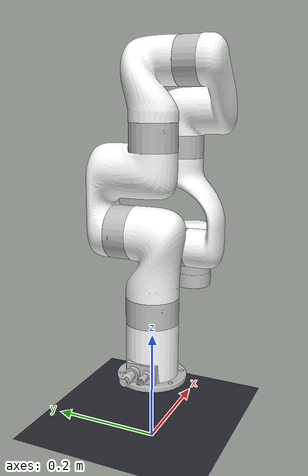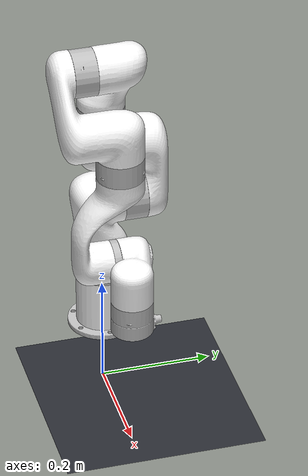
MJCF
<mujoco model="lineup_xarm7_scene">
  <include file="xarm7.xml"/>
  <visual>
    <global offwidth="1920" offheight="1080"/>
    <headlight ambient="0.35 0.35 0.35" diffuse="0.5 0.5 0.5" specular="0.1 0.1 0.1"/>
    <quality shadowsize="2048"/>
  </visual>
  <asset>
    <texture type="skybox" builtin="flat" rgb1="0.09 0.1 0.12" rgb2="0.09 0.1 0.12" width="32" height="32"/>
    <texture name="floor_tex" type="2d" builtin="checker" rgb1="0.18 0.19 0.22" rgb2="0.14 0.15 0.17" width="512" height="512"/>
    <material name="floor_mat" texture="floor_tex" texrepeat="6 6" reflectance="0.04"/>
  </asset>
  <worldbody>
    <light pos="1.5 -1.5 3" dir="-0.4 0.4 -1" diffuse="0.7 0.7 0.7" castshadow="true"/>
    <light pos="-1 1 2.5" dir="0.4 -0.4 -1" diffuse="0.35 0.35 0.35" castshadow="false"/>
    <geom name="floor" type="plane" size="4 4 0.1" material="floor_mat" pos="0 0 0.0"/>
  </worldbody>
</mujoco>

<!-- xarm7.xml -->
<mujoco model="xarm7 nohand">
  <compiler angle="radian" autolimits="true" meshdir="assets" />

  <option integrator="implicitfast" />

  <asset>
    <material name="white" rgba="1 1 1 1" />
    <material name="gray" rgba="0.753 0.753 0.753 1" />
    <material name="brushed_aluminum_gray"
          specular="0.5"
          shininess="0.9"
          reflectance="0.3"
          metallic="1.0"
          rgba="0.75 0.75 0.75 1"/>

    <mesh file="link_base_root.stl" />
    <mesh file="link_base_trunk.stl" />
    <mesh file="link1_trunk.stl" />
    <mesh file="link2_trunk.stl" />
    <mesh file="link3_trunk.stl" />
    <mesh file="link4_trunk.stl" />
    <mesh file="link5_trunk.stl" />
    <mesh file="link6_trunk.stl" />
    <mesh file="link7.stl" />

    <mesh file="link_base_ring.stl" />
    <mesh file="link1_ring.stl" />
    <mesh file="link2_ring.stl" />
    <mesh file="link3_ring.stl" />
    <mesh file="link4_ring.stl" />
    <mesh file="link5_ring.stl" />
    <mesh file="link6_ring.stl" />

    <mesh file="end_tool.stl" />
    <mesh file="link1_convex.stl" />
    <mesh file="link2_convex.stl" />
    <mesh file="link3_convex.stl" />
    <mesh file="link4_convex.stl" />
    <mesh file="link5_convex.stl" />
    <mesh file="link6_convex.stl" />
    <mesh file="link7_convex.stl" />
    <mesh file="end_tool_convex.stl" />
  </asset>

  <default>
    <default class="xarm7">
      <geom type="mesh" material="white" />
      <joint axis="0 0 1" armature="0.1" range="-6.28319 6.28319" frictionloss="1" />
      <general biastype="affine" ctrlrange="-6.28319 6.28319" />
      <default class="size1">
        <joint damping="10" actuatorgravcomp="true" />
        <general gainprm="1500" biasprm="0 -1500 -150" forcerange="-50 50" />
      </default>
      <default class="size2">
        <joint damping="5" actuatorgravcomp="true" />
        <general gainprm="1000" biasprm="0 -1000 -100" forcerange="-30 30" />
      </default>
      <default class="size3">
        <joint damping="2" actuatorgravcomp="true" />
        <general gainprm="800" biasprm="0 -800 -80" forcerange="-20 20" />
      </default>
      <default class="visual">
        <geom type="mesh" group="2" contype="0" conaffinity="0" />
      </default>
      <default class="collision">
        <geom type="mesh" group="3" mass="0" density="0" />
        <default class="fingertip_pad_collision_1">
          <geom type="box" size="0.0085 0.004 0.0085" pos="0 0.0055 0.0445" />
        </default>
        <default class="fingertip_pad_collision_2">
          <geom type="box" size="0.003 0.002 0.003" pos="0.0055 0.002 0.05" />
        </default>
        <default class="fingertip_pad_collision_3">
          <geom type="box" size="0.003 0.002 0.003" pos="-0.0055 0.002 0.05" />
        </default>
        <default class="fingertip_pad_collision_4">
          <geom type="box" size="0.003 0.002 0.0035" pos="0.0055 0.002 0.0395" />
        </default>
        <default class="fingertip_pad_collision_5">
          <geom type="box" size="0.003 0.002 0.0035" pos="-0.0055 0.002 0.0395" />
        </default>
      </default>
      <site size="0.001" rgba="1 0 0 1" group="4" />
    </default>
  </default>

  <worldbody>
    <body name="base" pos="0 0 .12" childclass="xarm7" gravcomp="1">
      <inertial pos="-0.021131 -0.0016302 0.056488" quat="0.696843 0.20176 0.10388 0.680376"
        mass="0.88556"
        diaginertia="0.00382023 0.00335282 0.00167725" />
      <geom mesh="link_base_root" material="brushed_aluminum_gray" class="visual" />
      <geom mesh="link_base_trunk" class="visual" />
      <geom mesh="link_base_ring" material="brushed_aluminum_gray" class="visual" />
      <body name="link1" pos="0 0 0.267" gravcomp="1">
        <inertial pos="-0.0002 0.02905 -0.01233" quat="0.978953 -0.202769 -0.00441617 -0.0227264"
          mass="2.382"
          diaginertia="0.00569127 0.00533384 0.00293865" />
        <joint name="joint1" class="size1" actuatorgravcomp="true" />
        <geom mesh="link1_ring" material="brushed_aluminum_gray" class="visual" />
        <geom mesh="link1_trunk" class="visual" />
        <geom mesh="link1_convex" class="collision"/>
        <body name="link2" quat="1 -1 0 0" gravcomp="1">
          <inertial pos="0.00022 -0.12856 0.01735" quat="0.50198 0.86483 -0.00778841 0.00483285"
            mass="1.869"
            diaginertia="0.00959898 0.00937717 0.00201315" />
          <joint name="joint2" range="-2.059 2.0944" class="size1" actuatorgravcomp="true" />
          <geom mesh="link2_ring" material="brushed_aluminum_gray" class="visual"/>
          <geom mesh="link2_trunk" class="visual"/>
          <geom mesh="link2_convex" class="collision"/>
          <body name="link3" pos="0 -0.293 0" quat="1 1 0 0" gravcomp="1">
            <inertial pos="0.0466 -0.02463 -0.00768" quat="0.913819 0.289775 0.281481 -0.0416455"
              mass="1.6383"
              diaginertia="0.00351721 0.00294089 0.00195868" />
            <joint name="joint3" class="size2" actuatorgravcomp="true" />
            <geom mesh="link3_ring" material="brushed_aluminum_gray" class="visual"/>
            <geom mesh="link3_trunk" class="visual"/>
            <geom mesh="link3_convex" class="collision"/>
            <body name="link4" pos="0.0525 0 0" quat="1 1 0 0" gravcomp="1">
              <inertial pos="0.07047 -0.11575 0.012" quat="0.422108 0.852026 -0.126025 0.282832"
                mass="1.7269"
                diaginertia="0.00657137 0.00647948 0.00186763" />
              <joint name="joint4" range="-0.19198 3.927" class="size2" actuatorgravcomp="true" />
            <geom mesh="link4_ring" material="brushed_aluminum_gray" class="visual"/>
            <geom mesh="link4_trunk" class="visual"/>
              <geom mesh="link4_convex" class="collision"/>
              <body name="link5" pos="0.0775 -0.3425 0" quat="1 1 0 0" gravcomp="1">
                <inertial pos="-0.00032 0.01604 -0.026"
                  quat="0.999311 -0.0304457 0.000577067 0.0212082" mass="1.3203"
                  diaginertia="0.00534729 0.00499076 0.0013489" />
                <joint name="joint5" class="size2" actuatorgravcomp="true" />
                <geom mesh="link5_ring" material="brushed_aluminum_gray" class="visual"/>
                <geom mesh="link5_trunk" class="visual"/>
                <geom mesh="link5_convex" class="collision"/>
                <body name="link6" quat="1 1 0 0" gravcomp="1">
                  <inertial pos="0.06469 0.03278 0.02141" quat="-0.217672 0.772419 0.16258 0.574069"
                    mass="1.325"
                    diaginertia="0.00245421 0.00221646 0.00107273" />
                  <joint name="joint6" range="-1.69297 3.14159" class="size3" actuatorgravcomp="true" />
                  <geom mesh="link6_ring" material="brushed_aluminum_gray" class="visual"/>
                  <geom mesh="link6_trunk" class="visual"/>
                  <geom mesh="link6_convex" class="collision"/>
                  <body name="link7" pos="0.076 0.097 0" quat="1 -1 0 0" gravcomp="1">
                    <inertial pos="0 -0.00677 -0.01098" quat="0.487612 0.512088 -0.512088 0.487612"
                      mass="0.17"
                      diaginertia="0.000132176 9.3e-05 5.85236e-05" />
                    <joint name="joint7" class="size3" actuatorgravcomp="true" />
                    <geom material="brushed_aluminum_gray" mesh="link7" class="visual"/>
                    <geom mesh="end_tool_convex" class="collision"/>
                    <site name="attachment_site" />
                  </body>
                </body>
              </body>
            </body>
          </body>
        </body>
      </body>
    </body>
  </worldbody>

  <actuator>
    <general name="act1" joint="joint1" class="size1" />
    <general name="act2" joint="joint2" class="size1" ctrlrange="-2.059 2.0944" />
    <general name="act3" joint="joint3" class="size2" />
    <general name="act4" joint="joint4" class="size2" ctrlrange="-0.19198 3.927" />
    <general name="act5" joint="joint5" class="size2" />
    <general name="act6" joint="joint6" class="size3" ctrlrange="-1.69297 3.14159" />
    <general name="act7" joint="joint7" class="size3" />
  </actuator>

  <keyframe>
    <key name="home" qpos="0 -.247 0 .909 0 1.15644 0" ctrl="0 -.247 0 .909 0 1.15644 0" />
  </keyframe>
</mujoco>
